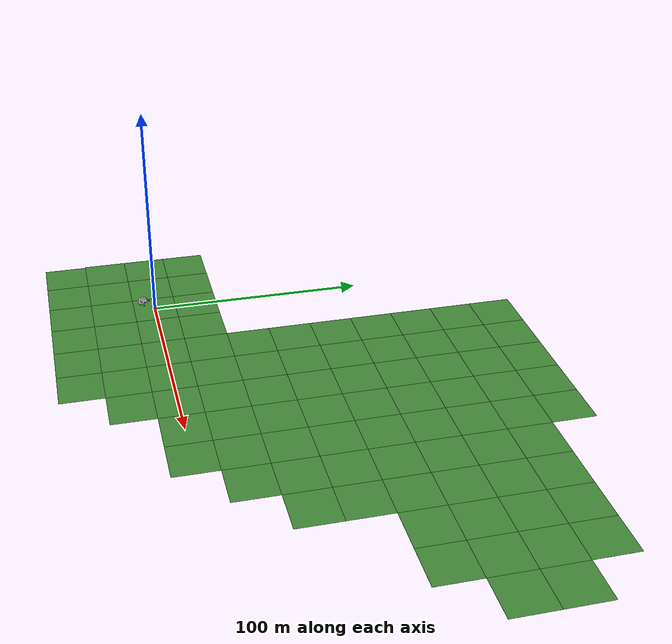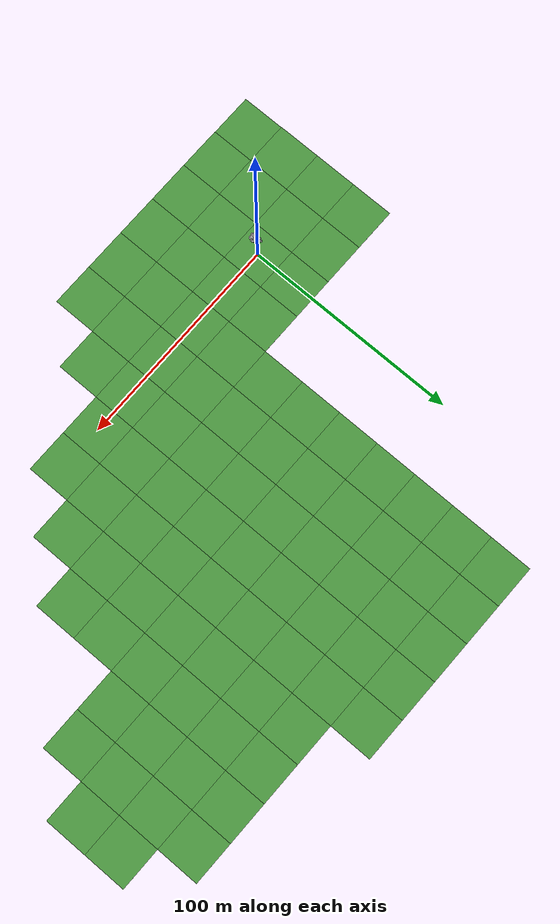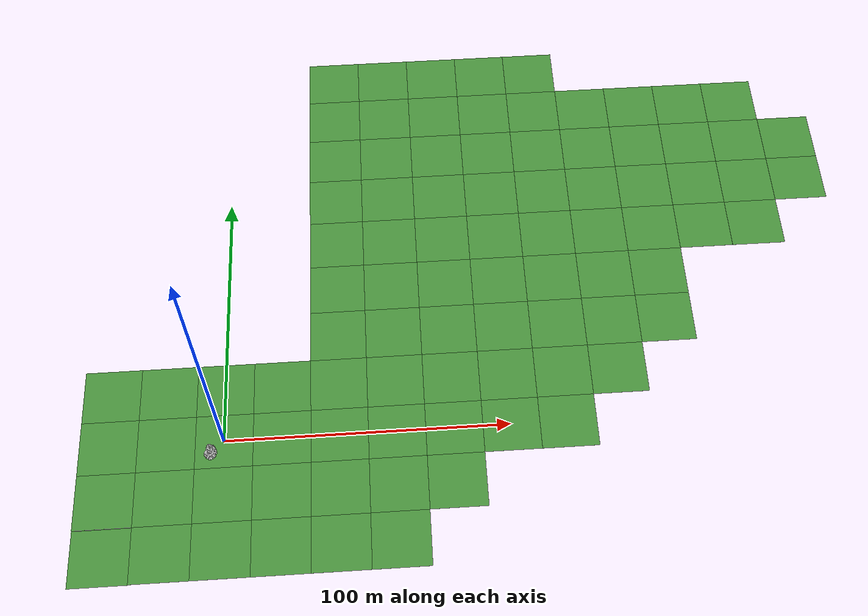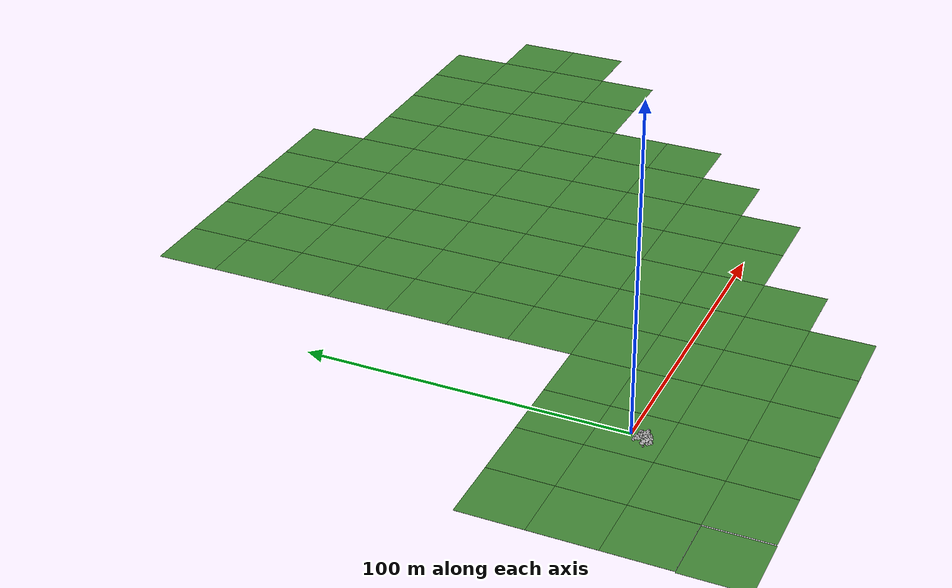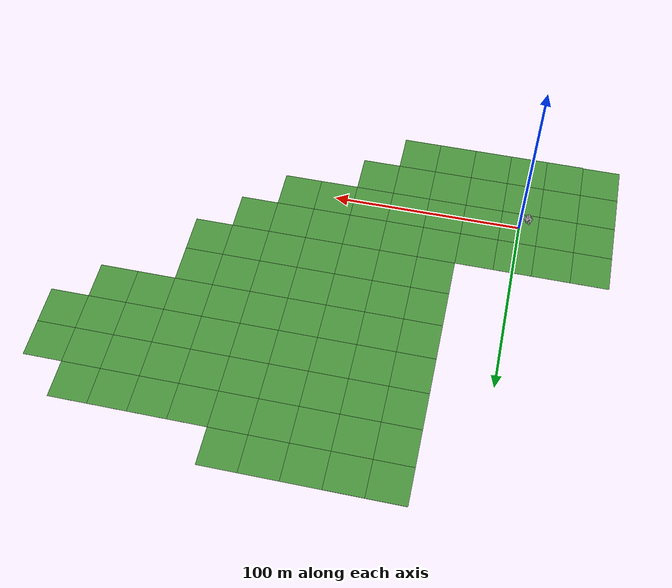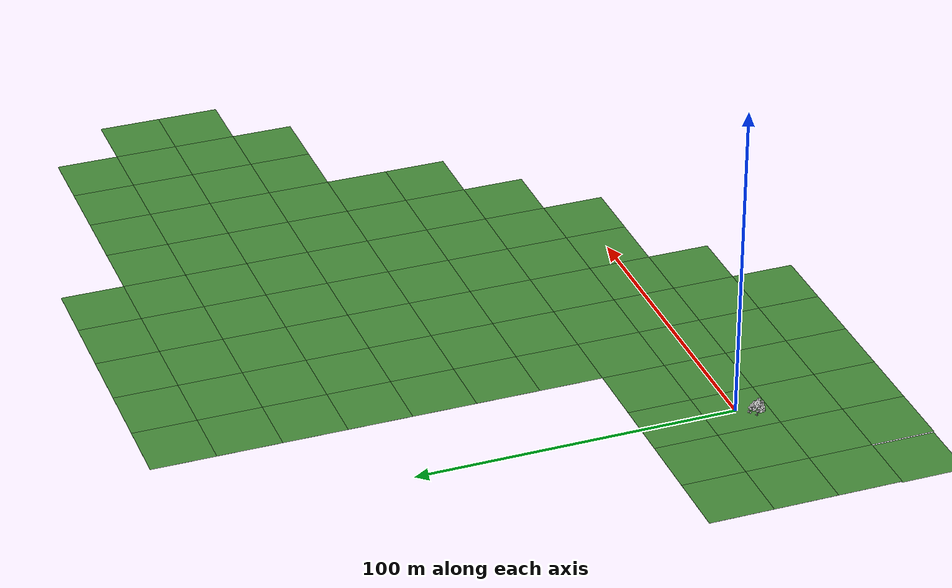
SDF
<sdf version="1.8">
 <world name="naked_forestland_small">
  <plugin name="ignition::gazebo::systems::Physics" filename="ignition-gazebo-physics-system"/>
  <plugin name="ignition::gazebo::systems::UserCommands" filename="ignition-gazebo-user-commands-system"/>
  <plugin name="ignition::gazebo::systems::SceneBroadcaster" filename="ignition-gazebo-scene-broadcaster-system"/>
  <plugin name="ignition::gazebo::systems::Contact" filename="ignition-gazebo-contact-system"/>
  <light name="sun" type="directional">
   <pose>0 0 10 0 -0 0</pose>
   <diffuse>0.8 0.8 0.8 1</diffuse>
   <specular>0.2 0.2 0.2 1</specular>
   <attenuation>
    <range>1000</range>
    <constant>0.9</constant>
    <linear>0.01</linear>
    <quadratic>0.001</quadratic>
   </attenuation>
   <direction>-0.5 0.1 -0.9</direction>
  </light>
  <gravity>0 0 0</gravity>
  <magnetic_field>6e-06 2.3e-05 -4.2e-05</magnetic_field>
  <atmosphere type="adiabatic"/>
  <physics name="default_physics" type="ignored">
   <max_step_size>0.01</max_step_size>
   <real_time_factor>1</real_time_factor>
   <real_time_update_rate>100</real_time_update_rate>
  </physics>
  <scene><ambient>1.0 1.0 1.0</ambient><background>0.8 0.8 0.8</background><shadows>1</shadows></scene>
  <spherical_coordinates>
   <latitude_deg>0.0</latitude_deg>
   <longitude_deg>0.0</longitude_deg>
   <elevation>10.0</elevation>
   <heading_deg>0</heading_deg>
   <surface_model>EARTH_WGS84</surface_model>
  </spherical_coordinates>
  <include><uri>model://grass_plane</uri><name>grass_plane</name></include>
  <include><uri>model://tree_1</uri><name>tree_1.0</name><pose>-4.4 -5 0 1.5707 0 0</pose></include>
 </world>
</sdf>

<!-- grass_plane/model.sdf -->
<sdf version='1.4'>
  <model name='grass_plane'>
    <static>true</static>
    <link name='link'>
      <collision name='collision'>
        <geometry>
          <plane>
            <normal>0 0 1</normal>
            <size>500 500</size>
          </plane>
        </geometry>
        <surface>
          <friction>
            <ode>
              <mu>0.5</mu>
              <mu2>.5</mu2>
            </ode>
          </friction>
        </surface>
      </collision>

      <visual name='visual_0'>
        <pose>-40 -40 0 0 0 0</pose>

        <cast_shadows>false</cast_shadows>
        <geometry>
          <plane>
            <normal>0 0 1</normal>
            <size>20 20</size>
          </plane>
        </geometry>
        <material>
          <script>
            <uri>model://../model_source/models/grass_plane/materials/scripts</uri>
            <uri>model://../model_source/models/grass_plane/materials/textures</uri>
            <name>vrc/grass</name>
          </script>
        </material>
      </visual>

      <visual name='visual_1'>
        <pose>-20 -40 0 0 0 0</pose>

        <cast_shadows>false</cast_shadows>
        <geometry>
          <plane>
            <normal>0 0 1</normal>
            <size>20 20</size>
          </plane>
        </geometry>
        <material>
          <script>
            <uri>model://../model_source/models/grass_plane/materials/scripts</uri>
            <uri>model://../model_source/models/grass_plane/materials/textures</uri>
            <name>vrc/grass</name>
          </script>
        </material>
      </visual>

      <visual name='visual_2'>
        <pose>0 -40 0 0 0 0</pose>

        <cast_shadows>false</cast_shadows>
        <geometry>
          <plane>
            <normal>0 0 1</normal>
            <size>20 20</size>
          </plane>
        </geometry>
        <material>
          <script>
            <uri>model://../model_source/models/grass_plane/materials/scripts</uri>
            <uri>model://../model_source/models/grass_plane/materials/textures</uri>
            <name>vrc/grass</name>
          </script>
        </material>
      </visual>

      <visual name='visual_3'>
        <pose>20 -40 0 0 0 0</pose>

        <cast_shadows>false</cast_shadows>
        <geometry>
          <plane>
            <normal>0 0 1</normal>
            <size>20 20</size>
          </plane>
        </geometry>
        <material>
          <script>
            <uri>model://../model_source/models/grass_plane/materials/scripts</uri>
            <uri>model://../model_source/models/grass_plane/materials/textures</uri>
            <name>vrc/grass</name>
          </script>
        </material>
      </visual>

      <visual name='visual_4'>
        <pose>40 -40 0 0 0 0</pose>

        <cast_shadows>false</cast_shadows>
        <geometry>
          <plane>
            <normal>0 0 1</normal>
            <size>20 20</size>
          </plane>
        </geometry>
        <material>
          <script>
            <uri>model://../model_source/models/grass_plane/materials/scripts</uri>
            <uri>model://../model_source/models/grass_plane/materials/textures</uri>
            <name>vrc/grass</name>
          </script>
        </material>
      </visual>

      <visual name='visual_5'>
        <pose>60 -40 0 0 0 0</pose>

        <cast_shadows>false</cast_shadows>
        <geometry>
          <plane>
            <normal>0 0 1</normal>
            <size>20 20</size>
          </plane>
        </geometry>
        <material>
          <script>
            <uri>model://../model_source/models/grass_plane/materials/scripts</uri>
            <uri>model://../model_source/models/grass_plane/materials/textures</uri>
            <name>vrc/grass</name>
          </script>
        </material>
      </visual>

      <visual name='visual_6'>
        <pose>-40 -20 0 0 0 0</pose>

        <cast_shadows>false</cast_shadows>
        <geometry>
          <plane>
            <normal>0 0 1</normal>
            <size>20 20</size>
          </plane>
        </geometry>
        <material>
          <script>
            <uri>model://../model_source/models/grass_plane/materials/scripts</uri>
            <uri>model://../model_source/models/grass_plane/materials/textures</uri>
            <name>vrc/grass</name>
          </script>
        </material>
      </visual>

      <visual name='visual_7'>
        <pose>-20 -20 0 0 0 0</pose>

        <cast_shadows>false</cast_shadows>
        <geometry>
          <plane>
            <normal>0 0 1</normal>
            <size>20 20</size>
          </plane>
        </geometry>
        <material>
          <script>
            <uri>model://../model_source/models/grass_plane/materials/scripts</uri>
            <uri>model://../model_source/models/grass_plane/materials/textures</uri>
            <name>vrc/grass</name>
          </script>
        </material>
      </visual>

      <visual name='visual_8'>
        <pose>0 -20 0 0 0 0</pose>

        <cast_shadows>false</cast_shadows>
        <geometry>
          <plane>
            <normal>0 0 1</normal>
            <size>20 20</size>
          </plane>
        </geometry>
        <material>
          <script>
            <uri>model://../model_source/models/grass_plane/materials/scripts</uri>
            <uri>model://../model_source/models/grass_plane/materials/textures</uri>
            <name>vrc/grass</name>
          </script>
        </material>
      </visual>

      <visual name='visual_9'>
        <pose>20 -20 0 0 0 0</pose>

        <cast_shadows>false</cast_shadows>
        <geometry>
          <plane>
            <normal>0 0 1</normal>
            <size>20 20</size>
          </plane>
        </geometry>
        <material>
          <script>
            <uri>model://../model_source/models/grass_plane/materials/scripts</uri>
            <uri>model://../model_source/models/grass_plane/materials/textures</uri>
            <name>vrc/grass</name>
          </script>
        </material>
      </visual>

      <visual name='visual_10'>
        <pose>40 -20 0 0 0 0</pose>

        <cast_shadows>false</cast_shadows>
        <geometry>
          <plane>
            <normal>0 0 1</normal>
            <size>20 20</size>
          </plane>
        </geometry>
        <material>
          <script>
            <uri>model://../model_source/models/grass_plane/materials/scripts</uri>
            <uri>model://../model_source/models/grass_plane/materials/textures</uri>
            <name>vrc/grass</name>
          </script>
        </material>
      </visual>

      <visual name='visual_11'>
        <pose>60 -20 0 0 0 0</pose>

        <cast_shadows>false</cast_shadows>
        <geometry>
          <plane>
            <normal>0 0 1</normal>
            <size>20 20</size>
          </plane>
        </geometry>
        <material>
          <script>
            <uri>model://../model_source/models/grass_plane/materials/scripts</uri>
            <uri>model://../model_source/models/grass_plane/materials/textures</uri>
            <name>vrc/grass</name>
          </script>
        </material>
      </visual>

      <visual name='visual_12'>
        <pose>80 -20 0 0 0 0</pose>

        <cast_shadows>false</cast_shadows>
        <geometry>
          <plane>
            <normal>0 0 1</normal>
            <size>20 20</size>
          </plane>
        </geometry>
        <material>
          <script>
            <uri>model://../model_source/models/grass_plane/materials/scripts</uri>
            <uri>model://../model_source/models/grass_plane/materials/textures</uri>
            <name>vrc/grass</name>
          </script>
        </material>
      </visual>

      <visual name='visual_13'>
        <pose>-40 0 0 0 0 0</pose>

        <cast_shadows>false</cast_shadows>
        <geometry>
          <plane>
            <normal>0 0 1</normal>
            <size>20 20</size>
          </plane>
        </geometry>
        <material>
          <script>
            <uri>model://../model_source/models/grass_plane/materials/scripts</uri>
            <uri>model://../model_source/models/grass_plane/materials/textures</uri>
            <name>vrc/grass</name>
          </script>
        </material>
      </visual>

      <visual name='visual_14'>
        <pose>-20 0 0 0 0 0</pose>

        <cast_shadows>false</cast_shadows>
        <geometry>
          <plane>
            <normal>0 0 1</normal>
            <size>20 20</size>
          </plane>
        </geometry>
        <material>
          <script>
            <uri>model://../model_source/models/grass_plane/materials/scripts</uri>
            <uri>model://../model_source/models/grass_plane/materials/textures</uri>
            <name>vrc/grass</name>
          </script>
        </material>
      </visual>

      <visual name='visual_15'>
        <pose>0 0 0 0 0 0</pose>

        <cast_shadows>false</cast_shadows>
        <geometry>
          <plane>
            <normal>0 0 1</normal>
            <size>20 20</size>
          </plane>
        </geometry>
        <material>
          <script>
            <uri>model://../model_source/models/grass_plane/materials/scripts</uri>
            <uri>model://../model_source/models/grass_plane/materials/textures</uri>
            <name>vrc/grass</name>
          </script>
        </material>
      </visual>

      <visual name='visual_16'>
        <pose>20 0 0 0 0 0</pose>

        <cast_shadows>false</cast_shadows>
        <geometry>
          <plane>
            <normal>0 0 1</normal>
            <size>20 20</size>
          </plane>
        </geometry>
        <material>
          <script>
            <uri>model://../model_source/models/grass_plane/materials/scripts</uri>
            <uri>model://../model_source/models/grass_plane/materials/textures</uri>
            <name>vrc/grass</name>
          </script>
        </material>
      </visual>

      <visual name='visual_17'>
        <pose>40 0 0 0 0 0</pose>

        <cast_shadows>false</cast_shadows>
        <geometry>
          <plane>
            <normal>0 0 1</normal>
            <size>20 20</size>
          </plane>
        </geometry>
        <material>
          <script>
            <uri>model://../model_source/models/grass_plane/materials/scripts</uri>
            <uri>model://../model_source/models/grass_plane/materials/textures</uri>
            <name>vrc/grass</name>
          </script>
        </material>
      </visual>

      <visual name='visual_18'>
        <pose>60 0 0 0 0 0</pose>

        <cast_shadows>false</cast_shadows>
        <geometry>
          <plane>
            <normal>0 0 1</normal>
            <size>20 20</size>
          </plane>
        </geometry>
        <material>
          <script>
            <uri>model://../model_source/models/grass_plane/materials/scripts</uri>
            <uri>model://../model_source/models/grass_plane/materials/textures</uri>
            <name>vrc/grass</name>
          </script>
        </material>
      </visual>

      <visual name='visual_19'>
        <pose>80 0 0 0 0 0</pose>

        <cast_shadows>false</cast_shadows>
        <geometry>
          <plane>
            <normal>0 0 1</normal>
            <size>20 20</size>
          </plane>
        </geometry>
        <material>
          <script>
            <uri>model://../model_source/models/grass_plane/materials/scripts</uri>
            <uri>model://../model_source/models/grass_plane/materials/textures</uri>
            <name>vrc/grass</name>
          </script>
        </material>
      </visual>

      <visual name='visual_20'>
        <pose>100 0 0 0 0 0</pose>

        <cast_shadows>false</cast_shadows>
        <geometry>
          <plane>
            <normal>0 0 1</normal>
            <size>20 20</size>
          </plane>
        </geometry>
        <material>
          <script>
            <uri>model://../model_source/models/grass_plane/materials/scripts</uri>
            <uri>model://../model_source/models/grass_plane/materials/textures</uri>
            <name>vrc/grass</name>
          </script>
        </material>
      </visual>

      <visual name='visual_21'>
        <pose>120 0 0 0 0 0</pose>

        <cast_shadows>false</cast_shadows>
        <geometry>
          <plane>
            <normal>0 0 1</normal>
            <size>20 20</size>
          </plane>
        </geometry>
        <material>
          <script>
            <uri>model://../model_source/models/grass_plane/materials/scripts</uri>
            <uri>model://../model_source/models/grass_plane/materials/textures</uri>
            <name>vrc/grass</name>
          </script>
        </material>
      </visual>

      <visual name='visual_22'>
        <pose>-40 20 0 0 0 0</pose>

        <cast_shadows>false</cast_shadows>
        <geometry>
          <plane>
            <normal>0 0 1</normal>
            <size>20 20</size>
          </plane>
        </geometry>
        <material>
          <script>
            <uri>model://../model_source/models/grass_plane/materials/scripts</uri>
            <uri>model://../model_source/models/grass_plane/materials/textures</uri>
            <name>vrc/grass</name>
          </script>
        </material>
      </visual>

      <visual name='visual_23'>
        <pose>-20 20 0 0 0 0</pose>

        <cast_shadows>false</cast_shadows>
        <geometry>
          <plane>
            <normal>0 0 1</normal>
            <size>20 20</size>
          </plane>
        </geometry>
        <material>
          <script>
            <uri>model://../model_source/models/grass_plane/materials/scripts</uri>
            <uri>model://../model_source/models/grass_plane/materials/textures</uri>
            <name>vrc/grass</name>
          </script>
        </material>
      </visual>

      <visual name='visual_24'>
        <pose>0 20 0 0 0 0</pose>

        <cast_shadows>false</cast_shadows>
        <geometry>
          <plane>
            <normal>0 0 1</normal>
            <size>20 20</size>
          </plane>
        </geometry>
        <material>
          <script>
            <uri>model://../model_source/models/grass_plane/materials/scripts</uri>
            <uri>model://../model_source/models/grass_plane/materials/textures</uri>
            <name>vrc/grass</name>
          </script>
        </material>
      </visual>

      <visual name='visual_25'>
        <pose>20 20 0 0 0 0</pose>

        <cast_shadows>false</cast_shadows>
        <geometry>
          <plane>
            <normal>0 0 1</normal>
            <size>20 20</size>
          </plane>
        </geometry>
        <material>
          <script>
            <uri>model://../model_source/models/grass_plane/materials/scripts</uri>
            <uri>model://../model_source/models/grass_plane/materials/textures</uri>
            <name>vrc/grass</name>
          </script>
        </material>
      </visual>

      <visual name='visual_26'>
        <pose>40 20 0 0 0 0</pose>

        <cast_shadows>false</cast_shadows>
        <geometry>
          <plane>
            <normal>0 0 1</normal>
            <size>20 20</size>
          </plane>
        </geometry>
        <material>
          <script>
            <uri>model://../model_source/models/grass_plane/materials/scripts</uri>
            <uri>model://../model_source/models/grass_plane/materials/textures</uri>
            <name>vrc/grass</name>
          </script>
        </material>
      </visual>

      <visual name='visual_27'>
        <pose>60 20 0 0 0 0</pose>

        <cast_shadows>false</cast_shadows>
        <geometry>
          <plane>
            <normal>0 0 1</normal>
            <size>20 20</size>
          </plane>
        </geometry>
        <material>
          <script>
            <uri>model://../model_source/models/grass_plane/materials/scripts</uri>
            <uri>model://../model_source/models/grass_plane/materials/textures</uri>
            <name>vrc/grass</name>
          </script>
        </material>
      </visual>

      <visual name='visual_28'>
        <pose>80 20 0 0 0 0</pose>

        <cast_shadows>false</cast_shadows>
        <geometry>
          <plane>
            <normal>0 0 1</normal>
            <size>20 20</size>
          </plane>
        </geometry>
        <material>
          <script>
            <uri>model://../model_source/models/grass_plane/materials/scripts</uri>
            <uri>model://../model_source/models/grass_plane/materials/textures</uri>
            <name>vrc/grass</name>
          </script>
        </material>
      </visual>

      <visual name='visual_29'>
        <pose>100 20 0 0 0 0</pose>

        <cast_shadows>false</cast_shadows>
        <geometry>
          <plane>
            <normal>0 0 1</normal>
            <size>20 20</size>
          </plane>
        </geometry>
        <material>
          <script>
            <uri>model://../model_source/models/grass_plane/materials/scripts</uri>
            <uri>model://../model_source/models/grass_plane/materials/textures</uri>
            <name>vrc/grass</name>
          </script>
        </material>
      </visual>

      <visual name='visual_30'>
        <pose>120 20 0 0 0 0</pose>

        <cast_shadows>false</cast_shadows>
        <geometry>
          <plane>
            <normal>0 0 1</normal>
            <size>20 20</size>
          </plane>
        </geometry>
        <material>
          <script>
            <uri>model://../model_source/models/grass_plane/materials/scripts</uri>
            <uri>model://../model_source/models/grass_plane/materials/textures</uri>
            <name>vrc/grass</name>
          </script>
        </material>
      </visual>

      <visual name='visual_31'>
        <pose>140 20 0 0 0 0</pose>

        <cast_shadows>false</cast_shadows>
        <geometry>
          <plane>
            <normal>0 0 1</normal>
            <size>20 20</size>
          </plane>
        </geometry>
        <material>
          <script>
            <uri>model://../model_source/models/grass_plane/materials/scripts</uri>
            <uri>model://../model_source/models/grass_plane/materials/textures</uri>
            <name>vrc/grass</name>
          </script>
        </material>
      </visual>

      <visual name='visual_32'>
        <pose>40 40 0 0 0 0</pose>

        <cast_shadows>false</cast_shadows>
        <geometry>
          <plane>
            <normal>0 0 1</normal>
            <size>20 20</size>
          </plane>
        </geometry>
        <material>
          <script>
            <uri>model://../model_source/models/grass_plane/materials/scripts</uri>
            <uri>model://../model_source/models/grass_plane/materials/textures</uri>
            <name>vrc/grass</name>
          </script>
        </material>
      </visual>

      <visual name='visual_33'>
        <pose>60 40 0 0 0 0</pose>

        <cast_shadows>false</cast_shadows>
        <geometry>
          <plane>
            <normal>0 0 1</normal>
            <size>20 20</size>
          </plane>
        </geometry>
        <material>
          <script>
            <uri>model://../model_source/models/grass_plane/materials/scripts</uri>
            <uri>model://../model_source/models/grass_plane/materials/textures</uri>
            <name>vrc/grass</name>
          </script>
        </material>
      </visual>

      <visual name='visual_34'>
        <pose>80 40 0 0 0 0</pose>

        <cast_shadows>false</cast_shadows>
        <geometry>
          <plane>
            <normal>0 0 1</normal>
            <size>20 20</size>
          </plane>
        </geometry>
        <material>
          <script>
            <uri>model://../model_source/models/grass_plane/materials/scripts</uri>
            <uri>model://../model_source/models/grass_plane/materials/textures</uri>
            <name>vrc/grass</name>
          </script>
        </material>
      </visual>

      <visual name='visual_35'>
        <pose>100 40 0 0 0 0</pose>

        <cast_shadows>false</cast_shadows>
        <geometry>
          <plane>
            <normal>0 0 1</normal>
            <size>20 20</size>
          </plane>
        </geometry>
        <material>
          <script>
            <uri>model://../model_source/models/grass_plane/materials/scripts</uri>
            <uri>model://../model_source/models/grass_plane/materials/textures</uri>
            <name>vrc/grass</name>
          </script>
        </material>
      </visual>

      <visual name='visual_36'>
        <pose>120 40 0 0 0 0</pose>

        <cast_shadows>false</cast_shadows>
        <geometry>
          <plane>
            <normal>0 0 1</normal>
            <size>20 20</size>
          </plane>
        </geometry>
        <material>
          <script>
            <uri>model://../model_source/models/grass_plane/materials/scripts</uri>
            <uri>model://../model_source/models/grass_plane/materials/textures</uri>
            <name>vrc/grass</name>
          </script>
        </material>
      </visual>

      <visual name='visual_37'>
        <pose>140 40 0 0 0 0</pose>

        <cast_shadows>false</cast_shadows>
        <geometry>
          <plane>
            <normal>0 0 1</normal>
            <size>20 20</size>
          </plane>
        </geometry>
        <material>
          <script>
            <uri>model://../model_source/models/grass_plane/materials/scripts</uri>
            <uri>model://../model_source/models/grass_plane/materials/textures</uri>
            <name>vrc/grass</name>
          </script>
        </material>
      </visual>

      <visual name='visual_38'>
        <pose>160 40 0 0 0 0</pose>

        <cast_shadows>false</cast_shadows>
        <geometry>
          <plane>
            <normal>0 0 1</normal>
            <size>20 20</size>
          </plane>
        </geometry>
        <material>
          <script>
            <uri>model://../model_source/models/grass_plane/materials/scripts</uri>
            <uri>model://../model_source/models/grass_plane/materials/textures</uri>
            <name>vrc/grass</name>
          </script>
        </material>
      </visual>

      <visual name='visual_39'>
        <pose>40 60 0 0 0 0</pose>

        <cast_shadows>false</cast_shadows>
        <geometry>
          <plane>
            <normal>0 0 1</normal>
            <size>20 20</size>
          </plane>
        </geometry>
        <material>
          <script>
            <uri>model://../model_source/models/grass_plane/materials/scripts</uri>
            <uri>model://../model_source/models/grass_plane/materials/textures</uri>
            <name>vrc/grass</name>
          </script>
        </material>
      </visual>

      <visual name='visual_40'>
        <pose>60 60 0 0 0 0</pose>

        <cast_shadows>false</cast_shadows>
        <geometry>
          <plane>
            <normal>0 0 1</normal>
            <size>20 20</size>
          </plane>
        </geometry>
        <material>
          <script>
            <uri>model://../model_source/models/grass_plane/materials/scripts</uri>
            <uri>model://../model_source/models/grass_plane/materials/textures</uri>
            <name>vrc/grass</name>
          </script>
        </material>
      </visual>

      <visual name='visual_41'>
        <pose>80 60 0 0 0 0</pose>

        <cast_shadows>false</cast_shadows>
        <geometry>
          <plane>
            <normal>0 0 1</normal>
            <size>20 20</size>
          </plane>
        </geometry>
        <material>
          <script>
            <uri>model://../model_source/models/grass_plane/materials/scripts</uri>
            <uri>model://../model_source/models/grass_plane/materials/textures</uri>
            <name>vrc/grass</name>
          </script>
        </material>
      </visual>

      <visual name='visual_42'>
        <pose>100 60 0 0 0 0</pose>

        <cast_shadows>false</cast_shadows>
        <geometry>
          <plane>
            <normal>0 0 1</normal>
            <size>20 20</size>
          </plane>
        </geometry>
        <material>
          <script>
            <uri>model://../model_source/models/grass_plane/materials/scripts</uri>
            <uri>model://../model_source/models/grass_plane/materials/textures</uri>
            <name>vrc/grass</name>
          </script>
        </material>
      </visual>

      <visual name='visual_43'>
        <pose>120 60 0 0 0 0</pose>

        <cast_shadows>false</cast_shadows>
        <geometry>
          <plane>
            <normal>0 0 1</normal>
            <size>20 20</size>
          </plane>
        </geometry>
        <material>
          <script>
            <uri>model://../model_source/models/grass_plane/materials/scripts</uri>
            <uri>model://../model_source/models/grass_plane/materials/textures</uri>
            <name>vrc/grass</name>
          </script>
        </material>
      </visual>

      <visual name='visual_44'>
        <pose>140 60 0 0 0 0</pose>

        <cast_shadows>false</cast_shadows>
        <geometry>
          <plane>
            <normal>0 0 1</normal>
            <size>20 20</size>
          </plane>
        </geometry>
        <material>
          <script>
            <uri>model://../model_source/models/grass_plane/materials/scripts</uri>
            <uri>model://../model_source/models/grass_plane/materials/textures</uri>
            <name>vrc/grass</name>
          </script>
        </material>
      </visual>

      <visual name='visual_45'>
        <pose>160 60 0 0 0 0</pose>

        <cast_shadows>false</cast_shadows>
        <geometry>
          <plane>
            <normal>0 0 1</normal>
            <size>20 20</size>
          </plane>
        </geometry>
        <material>
          <script>
            <uri>model://../model_source/models/grass_plane/materials/scripts</uri>
            <uri>model://../model_source/models/grass_plane/materials/textures</uri>
            <name>vrc/grass</name>
          </script>
        </material>
      </visual>

      <visual name='visual_46'>
        <pose>40 80 0 0 0 0</pose>

        <cast_shadows>false</cast_shadows>
        <geometry>
          <plane>
            <normal>0 0 1</normal>
            <size>20 20</size>
          </plane>
        </geometry>
        <material>
          <script>
            <uri>model://../model_source/models/grass_plane/materials/scripts</uri>
            <uri>model://../model_source/models/grass_plane/materials/textures</uri>
            <name>vrc/grass</name>
          </script>
        </material>
      </visual>

      <visual name='visual_47'>
        <pose>60 80 0 0 0 0</pose>

        <cast_shadows>false</cast_shadows>
        <geometry>
          <plane>
            <normal>0 0 1</normal>
            <size>20 20</size>
          </plane>
        </geometry>
        <material>
          <script>
            <uri>model://../model_source/models/grass_plane/materials/scripts</uri>
            <uri>model://../model_source/models/grass_plane/materials/textures</uri>
            <name>vrc/grass</name>
          </script>
        </material>
      </visual>

      <visual name='visual_48'>
        <pose>80 80 0 0 0 0</pose>

        <cast_shadows>false</cast_shadows>
        <geometry>
          <plane>
            <normal>0 0 1</normal>
            <size>20 20</size>
          </plane>
        </geometry>
        <material>
          <script>
            <uri>model://../model_source/models/grass_plane/materials/scripts</uri>
            <uri>model://../model_source/models/grass_plane/materials/textures</uri>
            <name>vrc/grass</name>
          </script>
        </material>
      </visual>

      <visual name='visual_49'>
        <pose>100 80 0 0 0 0</pose>

        <cast_shadows>false</cast_shadows>
        <geometry>
          <plane>
            <normal>0 0 1</normal>
            <size>20 20</size>
          </plane>
        </geometry>
        <material>
          <script>
            <uri>model://../model_source/models/grass_plane/materials/scripts</uri>
            <uri>model://../model_source/models/grass_plane/materials/textures</uri>
            <name>vrc/grass</name>
          </script>
        </material>
      </visual>

      <visual name='visual_50'>
        <pose>120 80 0 0 0 0</pose>

        <cast_shadows>false</cast_shadows>
        <geometry>
          <plane>
            <normal>0 0 1</normal>
            <size>20 20</size>
          </plane>
        </geometry>
        <material>
          <script>
            <uri>model://../model_source/models/grass_plane/materials/scripts</uri>
            <uri>model://../model_source/models/grass_plane/materials/textures</uri>
            <name>vrc/grass</name>
          </script>
        </material>
      </visual>

      <visual name='visual_51'>
        <pose>140 80 0 0 0 0</pose>

        <cast_shadows>false</cast_shadows>
        <geometry>
          <plane>
            <normal>0 0 1</normal>
            <size>20 20</size>
          </plane>
        </geometry>
        <material>
          <script>
            <uri>model://../model_source/models/grass_plane/materials/scripts</uri>
            <uri>model://../model_source/models/grass_plane/materials/textures</uri>
            <name>vrc/grass</name>
          </script>
        </material>
      </visual>

      <visual name='visual_52'>
        <pose>160 80 0 0 0 0</pose>

        <cast_shadows>false</cast_shadows>
        <geometry>
          <plane>
            <normal>0 0 1</normal>
            <size>20 20</size>
          </plane>
        </geometry>
        <material>
          <script>
            <uri>model://../model_source/models/grass_plane/materials/scripts</uri>
            <uri>model://../model_source/models/grass_plane/materials/textures</uri>
            <name>vrc/grass</name>
          </script>
        </material>
      </visual>

      <visual name='visual_53'>
        <pose>180 80 0 0 0 0</pose>

        <cast_shadows>false</cast_shadows>
        <geometry>
          <plane>
            <normal>0 0 1</normal>
            <size>20 20</size>
          </plane>
        </geometry>
        <material>
          <script>
            <uri>model://../model_source/models/grass_plane/materials/scripts</uri>
            <uri>model://../model_source/models/grass_plane/materials/textures</uri>
            <name>vrc/grass</name>
          </script>
        </material>
      </visual>

      <visual name='visual_54'>
        <pose>200 80 0 0 0 0</pose>

        <cast_shadows>false</cast_shadows>
        <geometry>
          <plane>
            <normal>0 0 1</normal>
            <size>20 20</size>
          </plane>
        </geometry>
        <material>
          <script>
            <uri>model://../model_source/models/grass_plane/materials/scripts</uri>
            <uri>model://../model_source/models/grass_plane/materials/textures</uri>
            <name>vrc/grass</name>
          </script>
        </material>
      </visual>

      <visual name='visual_55'>
        <pose>40 100 0 0 0 0</pose>

        <cast_shadows>false</cast_shadows>
        <geometry>
          <plane>
            <normal>0 0 1</normal>
            <size>20 20</size>
          </plane>
        </geometry>
        <material>
          <script>
            <uri>model://../model_source/models/grass_plane/materials/scripts</uri>
            <uri>model://../model_source/models/grass_plane/materials/textures</uri>
            <name>vrc/grass</name>
          </script>
        </material>
      </visual>

      <visual name='visual_56'>
        <pose>60 100 0 0 0 0</pose>

        <cast_shadows>false</cast_shadows>
        <geometry>
          <plane>
            <normal>0 0 1</normal>
            <size>20 20</size>
          </plane>
        </geometry>
        <material>
          <script>
            <uri>model://../model_source/models/grass_plane/materials/scripts</uri>
            <uri>model://../model_source/models/grass_plane/materials/textures</uri>
            <name>vrc/grass</name>
          </script>
        </material>
      </visual>

      <visual name='visual_57'>
        <pose>80 100 0 0 0 0</pose>

        <cast_shadows>false</cast_shadows>
        <geometry>
          <plane>
            <normal>0 0 1</normal>
            <size>20 20</size>
          </plane>
        </geometry>
        <material>
          <script>
            <uri>model://../model_source/models/grass_plane/materials/scripts</uri>
            <uri>model://../model_source/models/grass_plane/materials/textures</uri>
            <name>vrc/grass</name>
          </script>
        </material>
      </visual>

      <visual name='visual_58'>
        <pose>100 100 0 0 0 0</pose>

        <cast_shadows>false</cast_shadows>
        <geometry>
          <plane>
            <normal>0 0 1</normal>
            <size>20 20</size>
          </plane>
        </geometry>
        <material>
          <script>
            <uri>model://../model_source/models/grass_plane/materials/scripts</uri>
            <uri>model://../model_source/models/grass_plane/materials/textures</uri>
            <name>vrc/grass</name>
          </script>
        </material>
      </visual>

      <visual name='visual_59'>
        <pose>120 100 0 0 0 0</pose>

        <cast_shadows>false</cast_shadows>
        <geometry>
          <plane>
            <normal>0 0 1</normal>
            <size>20 20</size>
          </plane>
        </geometry>
        <material>
          <script>
            <uri>model://../model_source/models/grass_plane/materials/scripts</uri>
            <uri>model://../model_source/models/grass_plane/materials/textures</uri>
            <name>vrc/grass</name>
          </script>
        </material>
      </visual>

      <visual name='visual_60'>
        <pose>140 100 0 0 0 0</pose>

        <cast_shadows>false</cast_shadows>
        <geometry>
          <plane>
            <normal>0 0 1</normal>
            <size>20 20</size>
          </plane>
        </geometry>
        <material>
          <script>
            <uri>model://../model_source/models/grass_plane/materials/scripts</uri>
            <uri>model://../model_source/models/grass_plane/materials/textures</uri>
            <name>vrc/grass</name>
          </script>
        </material>
      </visual>

      <visual name='visual_61'>
        <pose>160 100 0 0 0 0</pose>

        <cast_shadows>false</cast_shadows>
        <geometry>
          <plane>
            <normal>0 0 1</normal>
            <size>20 20</size>
          </plane>
        </geometry>
        <material>
          <script>
            <uri>model://../model_source/models/grass_plane/materials/scripts</uri>
            <uri>model://../model_source/models/grass_plane/materials/textures</uri>
            <name>vrc/grass</name>
          </script>
        </material>
      </visual>

      <visual name='visual_62'>
        <pose>180 100 0 0 0 0</pose>

        <cast_shadows>false</cast_shadows>
        <geometry>
          <plane>
            <normal>0 0 1</normal>
            <size>20 20</size>
          </plane>
        </geometry>
        <material>
          <script>
            <uri>model://../model_source/models/grass_plane/materials/scripts</uri>
            <uri>model://../model_source/models/grass_plane/materials/textures</uri>
            <name>vrc/grass</name>
          </script>
        </material>
      </visual>

      <visual name='visual_63'>
        <pose>200 100 0 0 0 0</pose>

        <cast_shadows>false</cast_shadows>
        <geometry>
          <plane>
            <normal>0 0 1</normal>
            <size>20 20</size>
          </plane>
        </geometry>
        <material>
          <script>
            <uri>model://../model_source/models/grass_plane/materials/scripts</uri>
            <uri>model://../model_source/models/grass_plane/materials/textures</uri>
            <name>vrc/grass</name>
          </script>
        </material>
      </visual>

      <visual name='visual_63a'>
        <pose>220 100 0 0 0 0</pose>

        <cast_shadows>false</cast_shadows>
        <geometry>
          <plane>
            <normal>0 0 1</normal>
            <size>20 20</size>
          </plane>
        </geometry>
        <material>
          <script>
            <uri>model://../model_source/models/grass_plane/materials/scripts</uri>
            <uri>model://../model_source/models/grass_plane/materials/textures</uri>
            <name>vrc/grass</name>
          </script>
        </material>
      </visual>

      <visual name='visual_64'>
        <pose>40 120 0 0 0 0</pose>

        <cast_shadows>false</cast_shadows>
        <geometry>
          <plane>
            <normal>0 0 1</normal>
            <size>20 20</size>
          </plane>
        </geometry>
        <material>
          <script>
            <uri>model://../model_source/models/grass_plane/materials/scripts</uri>
            <uri>model://../model_source/models/grass_plane/materials/textures</uri>
            <name>vrc/grass</name>
          </script>
        </material>
      </visual>

      <visual name='visual_65'>
        <pose>60 120 0 0 0 0</pose>

        <cast_shadows>false</cast_shadows>
        <geometry>
          <plane>
            <normal>0 0 1</normal>
            <size>20 20</size>
          </plane>
        </geometry>
        <material>
          <script>
            <uri>model://../model_source/models/grass_plane/materials/scripts</uri>
            <uri>model://../model_source/models/grass_plane/materials/textures</uri>
            <name>vrc/grass</name>
          </script>
        </material>
      </visual>

      <visual name='visual_66'>
        <pose>80 120 0 0 0 0</pose>

        <cast_shadows>false</cast_shadows>
        <geometry>
          <plane>
            <normal>0 0 1</normal>
            <size>20 20</size>
          </plane>
        </geometry>
        <material>
          <script>
            <uri>model://../model_source/models/grass_plane/materials/scripts</uri>
            <uri>model://../model_source/models/grass_plane/materials/textures</uri>
            <name>vrc/grass</name>
          </script>
        </material>
      </visual>

      <visual name='visual_67'>
        <pose>100 120 0 0 0 0</pose>

        <cast_shadows>false</cast_shadows>
        <geometry>
          <plane>
            <normal>0 0 1</normal>
            <size>20 20</size>
          </plane>
        </geometry>
        <material>
          <script>
            <uri>model://../model_source/models/grass_plane/materials/scripts</uri>
            <uri>model://../model_source/models/grass_plane/materials/textures</uri>
            <name>vrc/grass</name>
          </script>
        </material>
      </visual>

      <visual name='visual_68'>
        <pose>120 120 0 0 0 0</pose>

        <cast_shadows>false</cast_shadows>
        <geometry>
          <plane>
            <normal>0 0 1</normal>
            <size>20 20</size>
          </plane>
        </geometry>
        <material>
          <script>
            <uri>model://../model_source/models/grass_plane/materials/scripts</uri>
            <uri>model://../model_source/models/grass_plane/materials/textures</uri>
            <name>vrc/grass</name>
          </script>
        </material>
      </visual>

      <visual name='visual_69'>
        <pose>140 120 0 0 0 0</pose>

        <cast_shadows>false</cast_shadows>
        <geometry>
          <plane>
            <normal>0 0 1</normal>
            <size>20 20</size>
          </plane>
        </geometry>
        <material>
          <script>
            <uri>model://../model_source/models/grass_plane/materials/scripts</uri>
            <uri>model://../model_source/models/grass_plane/materials/textures</uri>
            <name>vrc/grass</name>
          </script>
        </material>
      </visual>

      <visual name='visual_70'>
        <pose>160 120 0 0 0 0</pose>

        <cast_shadows>false</cast_shadows>
        <geometry>
          <plane>
            <normal>0 0 1</normal>
            <size>20 20</size>
          </plane>
        </geometry>
        <material>
          <script>
            <uri>model://../model_source/models/grass_plane/materials/scripts</uri>
            <uri>model://../model_source/models/grass_plane/materials/textures</uri>
            <name>vrc/grass</name>
          </script>
        </material>
      </visual>

      <visual name='visual_71'>
        <pose>180 120 0 0 0 0</pose>

        <cast_shadows>false</cast_shadows>
        <geometry>
          <plane>
            <normal>0 0 1</normal>
            <size>20 20</size>
          </plane>
        </geometry>
        <material>
          <script>
            <uri>model://../model_source/models/grass_plane/materials/scripts</uri>
            <uri>model://../model_source/models/grass_plane/materials/textures</uri>
            <name>vrc/grass</name>
          </script>
        </material>
      </visual>

      <visual name='visual_72'>
        <pose>200 120 0 0 0 0</pose>

        <cast_shadows>false</cast_shadows>
        <geometry>
          <plane>
            <normal>0 0 1</normal>
            <size>20 20</size>
          </plane>
        </geometry>
        <material>
          <script>
            <uri>model://../model_source/models/grass_plane/materials/scripts</uri>
            <uri>model://../model_source/models/grass_plane/materials/textures</uri>
            <name>vrc/grass</name>
          </script>
        </material>
      </visual>

      <visual name='visual_72a'>
        <pose>220 120 0 0 0 0</pose>

        <cast_shadows>false</cast_shadows>
        <geometry>
          <plane>
            <normal>0 0 1</normal>
            <size>20 20</size>
          </plane>
        </geometry>
        <material>
          <script>
            <uri>model://../model_source/models/grass_plane/materials/scripts</uri>
            <uri>model://../model_source/models/grass_plane/materials/textures</uri>
            <name>vrc/grass</name>
          </script>
        </material>
      </visual>

      <visual name='visual_73'>
        <pose>40 140 0 0 0 0</pose>

        <cast_shadows>false</cast_shadows>
        <geometry>
          <plane>
            <normal>0 0 1</normal>
            <size>20 20</size>
          </plane>
        </geometry>
        <material>
          <script>
            <uri>model://../model_source/models/grass_plane/materials/scripts</uri>
            <uri>model://../model_source/models/grass_plane/materials/textures</uri>
            <name>vrc/grass</name>
          </script>
        </material>
      </visual>

      <visual name='visual_74'>
        <pose>60 140 0 0 0 0</pose>

        <cast_shadows>false</cast_shadows>
        <geometry>
          <plane>
            <normal>0 0 1</normal>
            <size>20 20</size>
          </plane>
        </geometry>
        <material>
          <script>
            <uri>model://../model_source/models/grass_plane/materials/scripts</uri>
            <uri>model://../model_source/models/grass_plane/materials/textures</uri>
            <name>vrc/grass</name>
          </script>
        </material>
      </visual>

      <visual name='visual_75'>
        <pose>80 140 0 0 0 0</pose>

        <cast_shadows>false</cast_shadows>
        <geometry>
          <plane>
            <normal>0 0 1</normal>
            <size>20 20</size>
          </plane>
        </geometry>
        <material>
          <script>
            <uri>model://../model_source/models/grass_plane/materials/scripts</uri>
            <uri>model://../model_source/models/grass_plane/materials/textures</uri>
            <name>vrc/grass</name>
          </script>
        </material>
      </visual>

      <visual name='visual_76'>
        <pose>100 140 0 0 0 0</pose>

        <cast_shadows>false</cast_shadows>
        <geometry>
          <plane>
            <normal>0 0 1</normal>
            <size>20 20</size>
          </plane>
        </geometry>
        <material>
          <script>
            <uri>model://../model_source/models/grass_plane/materials/scripts</uri>
            <uri>model://../model_source/models/grass_plane/materials/textures</uri>
            <name>vrc/grass</name>
          </script>
        </material>
      </visual>

      <visual name='visual_77'>
        <pose>120 140 0 0 0 0</pose>

        <cast_shadows>false</cast_shadows>
        <geometry>
          <plane>
            <normal>0 0 1</normal>
            <size>20 20</size>
          </plane>
        </geometry>
        <material>
          <script>
            <uri>model://../model_source/models/grass_plane/materials/scripts</uri>
            <uri>model://../model_source/models/grass_plane/materials/textures</uri>
            <name>vrc/grass</name>
          </script>
        </material>
      </visual>

      <visual name='visual_78'>
        <pose>140 140 0 0 0 0</pose>

        <cast_shadows>false</cast_shadows>
        <geometry>
          <plane>
            <normal>0 0 1</normal>
            <size>20 20</size>
          </plane>
        </geometry>
        <material>
          <script>
            <uri>model://../model_source/models/grass_plane/materials/scripts</uri>
            <uri>model://../model_source/models/grass_plane/materials/textures</uri>
            <name>vrc/grass</name>
          </script>
        </material>
      </visual>

      <visual name='visual_79'>
        <pose>160 140 0 0 0 0</pose>

        <cast_shadows>false</cast_shadows>
        <geometry>
          <plane>
            <normal>0 0 1</normal>
            <size>20 20</size>
          </plane>
        </geometry>
        <material>
          <script>
            <uri>model://../model_source/models/grass_plane/materials/scripts</uri>
            <uri>model://../model_source/models/grass_plane/materials/textures</uri>
            <name>vrc/grass</name>
          </script>
        </material>
      </visual>

      <visual name='visual_80'>
        <pose>180 140 0 0 0 0</pose>

        <cast_shadows>false</cast_shadows>
        <geometry>
          <plane>
            <normal>0 0 1</normal>
            <size>20 20</size>
          </plane>
        </geometry>
        <material>
          <script>
            <uri>model://../model_source/models/grass_plane/materials/scripts</uri>
            <uri>model://../model_source/models/grass_plane/materials/textures</uri>
            <name>vrc/grass</name>
          </script>
        </material>
      </visual>

      <visual name='visual_81'>
        <pose>200 140 0 0 0 0</pose>

        <cast_shadows>false</cast_shadows>
        <geometry>
          <plane>
            <normal>0 0 1</normal>
            <size>20 20</size>
          </plane>
        </geometry>
        <material>
          <script>
            <uri>model://../model_source/models/grass_plane/materials/scripts</uri>
            <uri>model://../model_source/models/grass_plane/materials/textures</uri>
            <name>vrc/grass</name>
          </script>
        </material>
      </visual>

      <visual name='visual_82'>
        <pose>40 160 0 0 0 0</pose>

        <cast_shadows>false</cast_shadows>
        <geometry>
          <plane>
            <normal>0 0 1</normal>
            <size>20 20</size>
          </plane>
        </geometry>
        <material>
          <script>
            <uri>model://../model_source/models/grass_plane/materials/scripts</uri>
            <uri>model://../model_source/models/grass_plane/materials/textures</uri>
            <name>vrc/grass</name>
          </script>
        </material>
      </visual>

      <visual name='visual_83'>
        <pose>60 160 0 0 0 0</pose>

        <cast_shadows>false</cast_shadows>
        <geometry>
          <plane>
            <normal>0 0 1</normal>
            <size>20 20</size>
          </plane>
        </geometry>
        <material>
          <script>
            <uri>model://../model_source/models/grass_plane/materials/scripts</uri>
            <uri>model://../model_source/models/grass_plane/materials/textures</uri>
            <name>vrc/grass</name>
          </script>
        </material>
      </visual>

      <visual name='visual_84'>
        <pose>80 160 0 0 0 0</pose>

        <cast_shadows>false</cast_shadows>
        <geometry>
          <plane>
            <normal>0 0 1</normal>
            <size>20 20</size>
          </plane>
        </geometry>
        <material>
          <script>
            <uri>model://../model_source/models/grass_plane/materials/scripts</uri>
            <uri>model://../model_source/models/grass_plane/materials/textures</uri>
            <name>vrc/grass</name>
          </script>
        </material>
      </visual>

      <visual name='visual_85'>
        <pose>100 160 0 0 0 0</pose>

        <cast_shadows>false</cast_shadows>
        <geometry>
          <plane>
            <normal>0 0 1</normal>
            <size>20 20</size>
          </plane>
        </geometry>
        <material>
          <script>
            <uri>model://../model_source/models/grass_plane/materials/scripts</uri>
            <uri>model://../model_source/models/grass_plane/materials/textures</uri>
            <name>vrc/grass</name>
          </script>
        </material>
      </visual>

      <visual name='visual_86'>
        <pose>120 160 0 0 0 0</pose>

        <cast_shadows>false</cast_shadows>
        <geometry>
          <plane>
            <normal>0 0 1</normal>
            <size>20 20</size>
          </plane>
        </geometry>
        <material>
          <script>
            <uri>model://../model_source/models/grass_plane/materials/scripts</uri>
            <uri>model://../model_source/models/grass_plane/materials/textures</uri>
            <name>vrc/grass</name>
          </script>
        </material>
      </visual>
    </link>
  </model>
</sdf>

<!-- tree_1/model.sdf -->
<sdf version="1.5">
  <model name="Tree 1">
    <static>true</static>
    <pose frame=''>0 0 0 1.57079 0 0</pose>
    <link name="link">
      <pose frame=''>0 0 0 0 0 0</pose>
      <collision name="collision">
        <geometry>
          <mesh>
            <scale>5 5 5</scale>
            <uri>model://tree_1/meshes/tree_1.obj</uri>
          </mesh>
        </geometry>
      </collision>
      <visual name="visual">
        <geometry>
          <mesh>

            <scale>5 5 5</scale>
            <uri>model://tree_1/meshes/tree_1.obj</uri>
          </mesh>
        </geometry>
      </visual>
    </link>
  </model>
</sdf>
